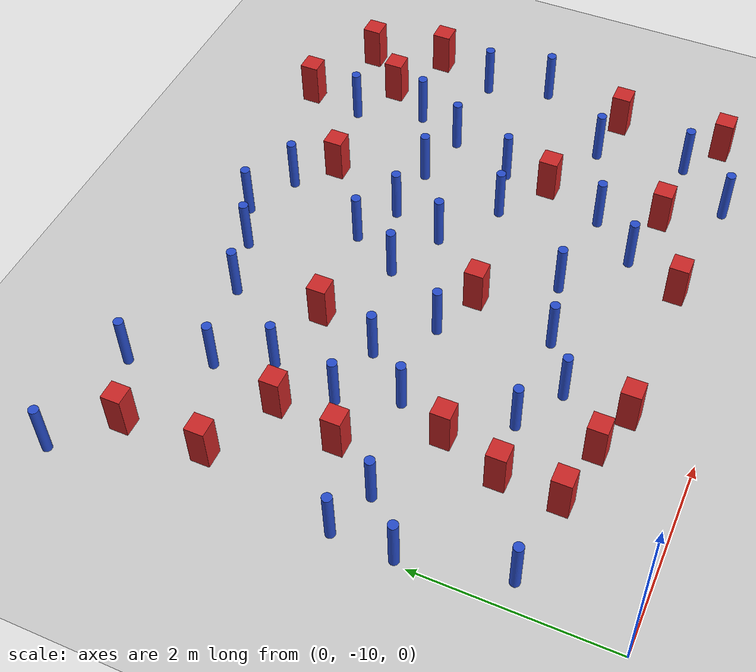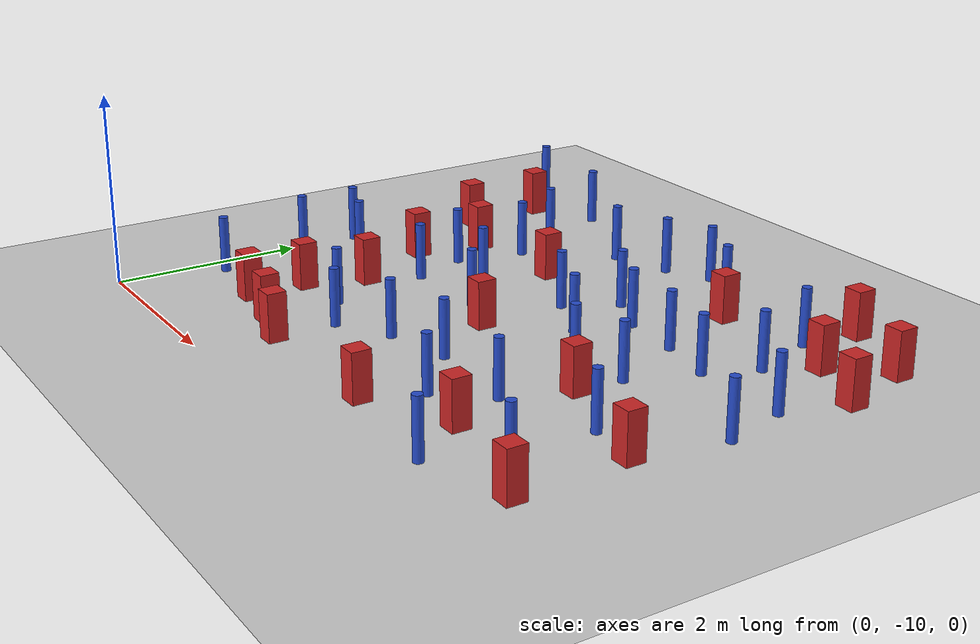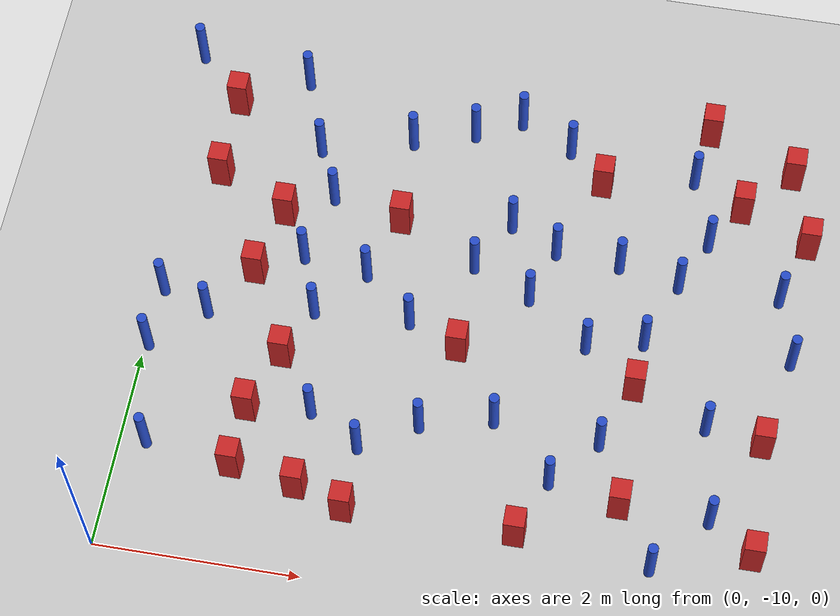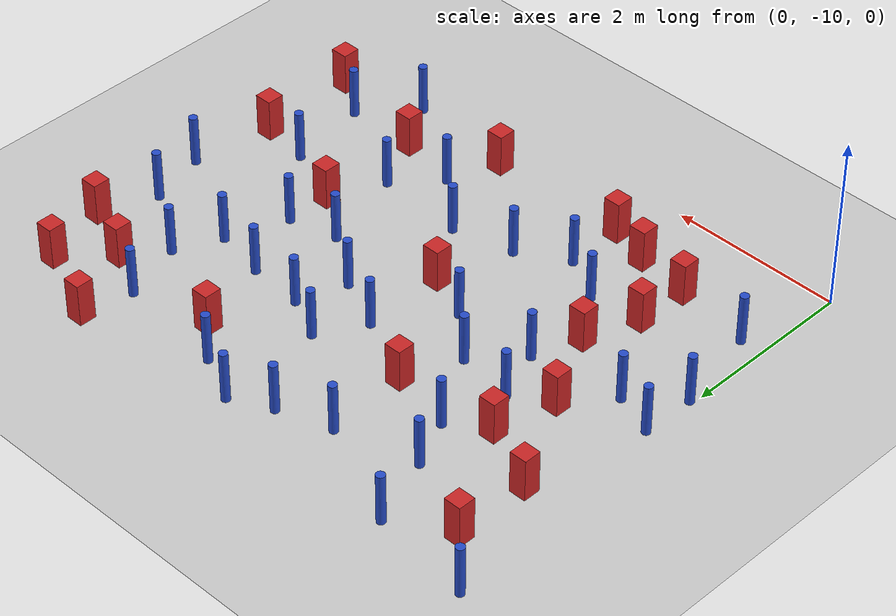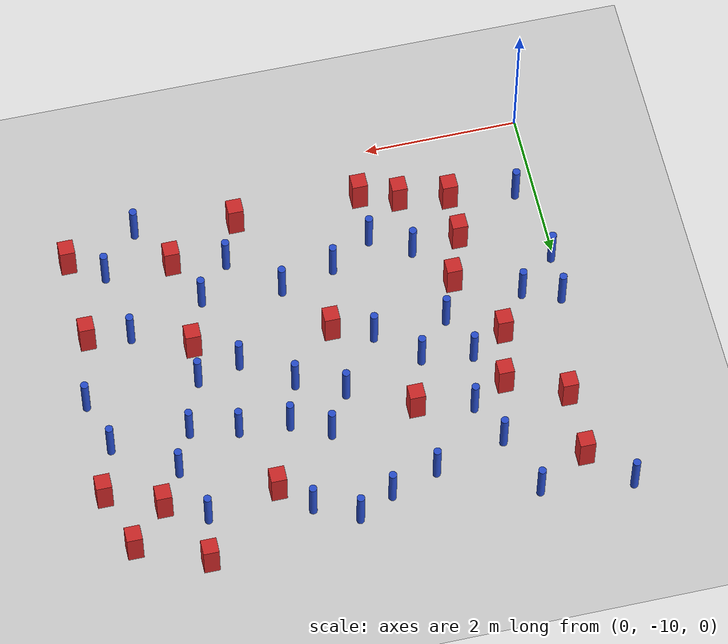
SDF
<sdf version="1.6">
 <world name="default">
  <model name="ground_plane">
   <static>1</static>
   <link name="link">
    <collision name="collision">
     <geometry><plane><normal>0 0 1</normal><size>100 100</size></plane></geometry>
     <surface><friction><ode><mu>100</mu><mu2>50</mu2></ode></friction></surface>
    </collision>
    <visual name="visual">
     <cast_shadows>0</cast_shadows>
     <geometry><plane><normal>0 0 1</normal><size>100 100</size></plane></geometry>
     <material>
      <ambient>1.0 1.0 1.0 1.0</ambient>
      <diffuse>0.8 0.8 0.8 1.0</diffuse>
      <specular>0.01 0.01 0.01 1.000000</specular>
     </material>
    </visual>
   </link>
  </model>
  <model name="pole_obstacle5">
   <static>true</static>
   <pose>3.81524435492 -4.99224262672 2.88873142074e-08 -9.90536689859e-09 4.60219948989e-07 -1.20965994961e-07</pose>
   <link name="link">
    <pose>0 0 0.3 0 -0 0</pose>
    <inertial>
     <mass>1</mass>
     <inertia><ixx>0.145833</ixx><ixy>0</ixy><ixz>0</ixz><iyy>0.145833</iyy><iyz>0</iyz><izz>0.125</izz></inertia>
    </inertial>
    <collision name="collision">
     <geometry><cylinder><radius>0.05</radius><length>.6</length></cylinder></geometry>
    </collision>
    <visual name="visual">
     <geometry><cylinder><radius>0.05</radius><length>.6</length></cylinder></geometry>
     <material>
      <script><name>Gazebo/Blue</name><uri>file://media/materials/scripts/gazebo.material</uri></script>
     </material>
    </visual>
   </link>
  </model>
  <model name="square_post_obstacle6">
   <static>true</static>
   <pose>4.18874064382 -5.33425178005 8.22691968438e-08 7.2212513382e-06 -7.54495500217e-07 2.29674213826e-05</pose>
   <link name="link">
    <pose>0 0 0.25 0 -0 0</pose>
    <inertial>
     <mass>100</mass>
     <inertia>
      <ixx>0.166667</ixx>
      <ixy>0</ixy>
      <ixz>0</ixz>
      <iyy>0.166667</iyy>
      <iyz>0</iyz>
      <izz>0.166667</izz>
     </inertia>
    </inertial>
    <collision name="collision"><geometry><box><size>.2 .2 .5</size></box></geometry></collision>
    <visual name="visual">
     <geometry><box><size>.2 .2 .5</size></box></geometry>
     <material>
      <script><name>Gazebo/Red</name><uri>file://media/materials/scripts/gazebo.material</uri></script>
     </material>
    </visual>
   </link>
  </model>
  <model name="pole_obstacle11">
   <static>true</static>
   <pose>4.8431363912 -7.06583838688 2.88873142074e-08 -9.90536690842e-09 4.60219948965e-07 -1.20965994976e-07</pose>
   <link name="link">
    <pose>0 0 0.3 0 -0 0</pose>
    <inertial>
     <mass>1</mass>
     <inertia><ixx>0.145833</ixx><ixy>0</ixy><ixz>0</ixz><iyy>0.145833</iyy><iyz>0</iyz><izz>0.125</izz></inertia>
    </inertial>
    <collision name="collision">
     <geometry><cylinder><radius>0.05</radius><length>.6</length></cylinder></geometry>
    </collision>
    <visual name="visual">
     <geometry><cylinder><radius>0.05</radius><length>.6</length></cylinder></geometry>
     <material>
      <script><name>Gazebo/Blue</name><uri>file://media/materials/scripts/gazebo.material</uri></script>
     </material>
    </visual>
   </link>
  </model>
  <model name="square_post_obstacle9">
   <static>true</static>
   <pose>2.24763330998 -6.09969372147 8.22691968438e-08 7.2212513382e-06 -7.54495500217e-07 2.29674213826e-05</pose>
   <link name="link">
    <pose>0 0 0.25 0 -0 0</pose>
    <inertial>
     <mass>100</mass>
     <inertia>
      <ixx>0.166667</ixx>
      <ixy>0</ixy>
      <ixz>0</ixz>
      <iyy>0.166667</iyy>
      <iyz>0</iyz>
      <izz>0.166667</izz>
     </inertia>
    </inertial>
    <collision name="collision"><geometry><box><size>.2 .2 .5</size></box></geometry></collision>
    <visual name="visual">
     <geometry><box><size>.2 .2 .5</size></box></geometry>
     <material>
      <script><name>Gazebo/Red</name><uri>file://media/materials/scripts/gazebo.material</uri></script>
     </material>
    </visual>
   </link>
  </model>
  <model name="pole_obstacle13">
   <static>true</static>
   <pose>2.27692390279 -8.6323744666 2.88873142074e-08 -9.90536692318e-09 4.6021994893e-07 -1.20965994988e-07</pose>
   <link name="link">
    <pose>0 0 0.3 0 -0 0</pose>
    <inertial>
     <mass>1</mass>
     <inertia><ixx>0.145833</ixx><ixy>0</ixy><ixz>0</ixz><iyy>0.145833</iyy><iyz>0</iyz><izz>0.125</izz></inertia>
    </inertial>
    <collision name="collision">
     <geometry><cylinder><radius>0.05</radius><length>.6</length></cylinder></geometry>
    </collision>
    <visual name="visual">
     <geometry><cylinder><radius>0.05</radius><length>.6</length></cylinder></geometry>
     <material>
      <script><name>Gazebo/Blue</name><uri>file://media/materials/scripts/gazebo.material</uri></script>
     </material>
    </visual>
   </link>
  </model>
  <model name="pole_obstacle20">
   <static>true</static>
   <pose>5.09812605099 -6.37419591388 2.88873142074e-08 -9.90536690842e-09 4.60219948965e-07 -1.20965994976e-07</pose>
   <link name="link">
    <pose>0 0 0.3 0 -0 0</pose>
    <inertial>
     <mass>1</mass>
     <inertia><ixx>0.145833</ixx><ixy>0</ixy><ixz>0</ixz><iyy>0.145833</iyy><iyz>0</iyz><izz>0.125</izz></inertia>
    </inertial>
    <collision name="collision">
     <geometry><cylinder><radius>0.05</radius><length>.6</length></cylinder></geometry>
    </collision>
    <visual name="visual">
     <geometry><cylinder><radius>0.05</radius><length>.6</length></cylinder></geometry>
     <material>
      <script><name>Gazebo/Blue</name><uri>file://media/materials/scripts/gazebo.material</uri></script>
     </material>
    </visual>
   </link>
  </model>
  <model name="pole_obstacle43">
   <static>true</static>
   <pose>0.264639694983 -8.90641489468 2.88873142074e-08 -9.90536691191e-09 4.60219948957e-07 -1.20965994982e-07</pose>
   <link name="link">
    <pose>0 0 0.3 0 -0 0</pose>
    <inertial>
     <mass>1</mass>
     <inertia><ixx>0.145833</ixx><ixy>0</ixy><ixz>0</ixz><iyy>0.145833</iyy><iyz>0</iyz><izz>0.125</izz></inertia>
    </inertial>
    <collision name="collision">
     <geometry><cylinder><radius>0.05</radius><length>.6</length></cylinder></geometry>
    </collision>
    <visual name="visual">
     <geometry><cylinder><radius>0.05</radius><length>.6</length></cylinder></geometry>
     <material>
      <script><name>Gazebo/Blue</name><uri>file://media/materials/scripts/gazebo.material</uri></script>
     </material>
    </visual>
   </link>
  </model>
  <model name="pole_obstacle46">
   <static>true</static>
   <pose>1.76827469784 -8.339376097 2.88873142074e-08 -9.90536690474e-09 4.60219948974e-07 -1.2096599497e-07</pose>
   <link name="link">
    <pose>0 0 0.3 0 -0 0</pose>
    <inertial>
     <mass>1</mass>
     <inertia><ixx>0.145833</ixx><ixy>0</ixy><ixz>0</ixz><iyy>0.145833</iyy><iyz>0</iyz><izz>0.125</izz></inertia>
    </inertial>
    <collision name="collision">
     <geometry><cylinder><radius>0.05</radius><length>.6</length></cylinder></geometry>
    </collision>
    <visual name="visual">
     <geometry><cylinder><radius>0.05</radius><length>.6</length></cylinder></geometry>
     <material>
      <script><name>Gazebo/Blue</name><uri>file://media/materials/scripts/gazebo.material</uri></script>
     </material>
    </visual>
   </link>
  </model>
  <model name="square_post_obstacle40">
   <static>true</static>
   <pose>0.339728241094 -4.977939211 8.22691968438e-08 7.22125133819e-06 -7.54495500217e-07 2.29674213826e-05</pose>
   <link name="link">
    <pose>0 0 0.25 0 -0 0</pose>
    <inertial>
     <mass>100</mass>
     <inertia>
      <ixx>0.166667</ixx>
      <ixy>0</ixy>
      <ixz>0</ixz>
      <iyy>0.166667</iyy>
      <iyz>0</iyz>
      <izz>0.166667</izz>
     </inertia>
    </inertial>
    <collision name="collision"><geometry><box><size>.2 .2 .5</size></box></geometry></collision>
    <visual name="visual">
     <geometry><box><size>.2 .2 .5</size></box></geometry>
     <material>
      <script><name>Gazebo/Red</name><uri>file://media/materials/scripts/gazebo.material</uri></script>
     </material>
    </visual>
   </link>
  </model>
  <model name="pole_obstacle58">
   <static>true</static>
   <pose>2.01731111533 -6.76396159729 2.88873142074e-08 -9.90536689932e-09 4.60219948987e-07 -1.20965994962e-07</pose>
   <link name="link">
    <pose>0 0 0.3 0 -0 0</pose>
    <inertial>
     <mass>1</mass>
     <inertia><ixx>0.145833</ixx><ixy>0</ixy><ixz>0</ixz><iyy>0.145833</iyy><iyz>0</iyz><izz>0.125</izz></inertia>
    </inertial>
    <collision name="collision">
     <geometry><cylinder><radius>0.05</radius><length>.6</length></cylinder></geometry>
    </collision>
    <visual name="visual">
     <geometry><cylinder><radius>0.05</radius><length>.6</length></cylinder></geometry>
     <material>
      <script><name>Gazebo/Blue</name><uri>file://media/materials/scripts/gazebo.material</uri></script>
     </material>
    </visual>
   </link>
  </model>
  <model name="square_post_obstacle46">
   <static>true</static>
   <pose>1.0769217529 -6.20205790344 8.22691968438e-08 7.2212513382e-06 -7.54495500217e-07 2.29674213826e-05</pose>
   <link name="link">
    <pose>0 0 0.25 0 -0 0</pose>
    <inertial>
     <mass>100</mass>
     <inertia>
      <ixx>0.166667</ixx>
      <ixy>0</ixy>
      <ixz>0</ixz>
      <iyy>0.166667</iyy>
      <iyz>0</iyz>
      <izz>0.166667</izz>
     </inertia>
    </inertial>
    <collision name="collision"><geometry><box><size>.2 .2 .5</size></box></geometry></collision>
    <visual name="visual">
     <geometry><box><size>.2 .2 .5</size></box></geometry>
     <material>
      <script><name>Gazebo/Red</name><uri>file://media/materials/scripts/gazebo.material</uri></script>
     </material>
    </visual>
   </link>
  </model>
  <model name="pole_obstacle62">
   <static>true</static>
   <pose>3.84203933356 -6.19958246371 2.88873142074e-08 -9.90536689859e-09 4.60219948989e-07 -1.20965994961e-07</pose>
   <link name="link">
    <pose>0 0 0.3 0 -0 0</pose>
    <inertial>
     <mass>1</mass>
     <inertia><ixx>0.145833</ixx><ixy>0</ixy><ixz>0</ixz><iyy>0.145833</iyy><iyz>0</iyz><izz>0.125</izz></inertia>
    </inertial>
    <collision name="collision">
     <geometry><cylinder><radius>0.05</radius><length>.6</length></cylinder></geometry>
    </collision>
    <visual name="visual">
     <geometry><cylinder><radius>0.05</radius><length>.6</length></cylinder></geometry>
     <material>
      <script><name>Gazebo/Blue</name><uri>file://media/materials/scripts/gazebo.material</uri></script>
     </material>
    </visual>
   </link>
  </model>
  <model name="square_post_obstacle52">
   <static>true</static>
   <pose>5.20889299281 -4.54300262199 8.22691968438e-08 7.2212513382e-06 -7.54495500217e-07 2.29674213826e-05</pose>
   <link name="link">
    <pose>0 0 0.25 0 -0 0</pose>
    <inertial>
     <mass>100</mass>
     <inertia>
      <ixx>0.166667</ixx>
      <ixy>0</ixy>
      <ixz>0</ixz>
      <iyy>0.166667</iyy>
      <iyz>0</iyz>
      <izz>0.166667</izz>
     </inertia>
    </inertial>
    <collision name="collision"><geometry><box><size>.2 .2 .5</size></box></geometry></collision>
    <visual name="visual">
     <geometry><box><size>.2 .2 .5</size></box></geometry>
     <material>
      <script><name>Gazebo/Red</name><uri>file://media/materials/scripts/gazebo.material</uri></script>
     </material>
    </visual>
   </link>
  </model>
  <model name="square_post_obstacle57">
   <static>true</static>
   <pose>1.36781638755 -7.78040220193 8.22691968438e-08 7.2212513382e-06 -7.54495500217e-07 2.29674213826e-05</pose>
   <link name="link">
    <pose>0 0 0.25 0 -0 0</pose>
    <inertial>
     <mass>100</mass>
     <inertia>
      <ixx>0.166667</ixx>
      <ixy>0</ixy>
      <ixz>0</ixz>
      <iyy>0.166667</iyy>
      <iyz>0</iyz>
      <izz>0.166667</izz>
     </inertia>
    </inertial>
    <collision name="collision"><geometry><box><size>.2 .2 .5</size></box></geometry></collision>
    <visual name="visual">
     <geometry><box><size>.2 .2 .5</size></box></geometry>
     <material>
      <script><name>Gazebo/Red</name><uri>file://media/materials/scripts/gazebo.material</uri></script>
     </material>
    </visual>
   </link>
  </model>
  <model name="pole_obstacle70">
   <static>true</static>
   <pose>1.58026823043 -7.26249361867 2.88873142074e-08 -9.90536689852e-09 4.60219948989e-07 -1.2096599496e-07</pose>
   <link name="link">
    <pose>0 0 0.3 0 -0 0</pose>
    <inertial>
     <mass>1</mass>
     <inertia><ixx>0.145833</ixx><ixy>0</ixy><ixz>0</ixz><iyy>0.145833</iyy><iyz>0</iyz><izz>0.125</izz></inertia>
    </inertial>
    <collision name="collision">
     <geometry><cylinder><radius>0.05</radius><length>.6</length></cylinder></geometry>
    </collision>
    <visual name="visual">
     <geometry><cylinder><radius>0.05</radius><length>.6</length></cylinder></geometry>
     <material>
      <script><name>Gazebo/Blue</name><uri>file://media/materials/scripts/gazebo.material</uri></script>
     </material>
    </visual>
   </link>
  </model>
  <model name="pole_obstacle73">
   <static>true</static>
   <pose>5.5492631859 -7.87879161012 2.88873142074e-08 -9.90536690842e-09 4.60219948965e-07 -1.20965994976e-07</pose>
   <link name="link">
    <pose>0 0 0.3 0 -0 0</pose>
    <inertial>
     <mass>1</mass>
     <inertia><ixx>0.145833</ixx><ixy>0</ixy><ixz>0</ixz><iyy>0.145833</iyy><iyz>0</iyz><izz>0.125</izz></inertia>
    </inertial>
    <collision name="collision">
     <geometry><cylinder><radius>0.05</radius><length>.6</length></cylinder></geometry>
    </collision>
    <visual name="visual">
     <geometry><cylinder><radius>0.05</radius><length>.6</length></cylinder></geometry>
     <material>
      <script><name>Gazebo/Blue</name><uri>file://media/materials/scripts/gazebo.material</uri></script>
     </material>
    </visual>
   </link>
  </model>
  <model name="pole_obstacle76">
   <static>true</static>
   <pose>0.538769032406 -7.43225004174 2.88873142074e-08 -9.90536689714e-09 4.60219948992e-07 -1.20965994957e-07</pose>
   <link name="link">
    <pose>0 0 0.3 0 -0 0</pose>
    <inertial>
     <mass>1</mass>
     <inertia><ixx>0.145833</ixx><ixy>0</ixy><ixz>0</ixz><iyy>0.145833</iyy><iyz>0</iyz><izz>0.125</izz></inertia>
    </inertial>
    <collision name="collision">
     <geometry><cylinder><radius>0.05</radius><length>.6</length></cylinder></geometry>
    </collision>
    <visual name="visual">
     <geometry><cylinder><radius>0.05</radius><length>.6</length></cylinder></geometry>
     <material>
      <script><name>Gazebo/Blue</name><uri>file://media/materials/scripts/gazebo.material</uri></script>
     </material>
    </visual>
   </link>
  </model>
  <model name="square_post_obstacle65">
   <static>true</static>
   <pose>4.83509331147 -8.81427664572 8.22691968438e-08 7.22125133819e-06 -7.54495500217e-07 2.29674213826e-05</pose>
   <link name="link">
    <pose>0 0 0.25 0 -0 0</pose>
    <inertial>
     <mass>100</mass>
     <inertia>
      <ixx>0.166667</ixx>
      <ixy>0</ixy>
      <ixz>0</ixz>
      <iyy>0.166667</iyy>
      <iyz>0</iyz>
      <izz>0.166667</izz>
     </inertia>
    </inertial>
    <collision name="collision"><geometry><box><size>.2 .2 .5</size></box></geometry></collision>
    <visual name="visual">
     <geometry><box><size>.2 .2 .5</size></box></geometry>
     <material>
      <script><name>Gazebo/Red</name><uri>file://media/materials/scripts/gazebo.material</uri></script>
     </material>
    </visual>
   </link>
  </model>
  <model name="pole_obstacle92">
   <static>true</static>
   <pose>5.69736549006 -8.83003891529 2.88873142074e-08 -9.9053668967e-09 4.60219948993e-07 -1.20965994957e-07</pose>
   <link name="link">
    <pose>0 0 0.3 0 -0 0</pose>
    <inertial>
     <mass>1</mass>
     <inertia><ixx>0.145833</ixx><ixy>0</ixy><ixz>0</ixz><iyy>0.145833</iyy><iyz>0</iyz><izz>0.125</izz></inertia>
    </inertial>
    <collision name="collision">
     <geometry><cylinder><radius>0.05</radius><length>.6</length></cylinder></geometry>
    </collision>
    <visual name="visual">
     <geometry><cylinder><radius>0.05</radius><length>.6</length></cylinder></geometry>
     <material>
      <script><name>Gazebo/Blue</name><uri>file://media/materials/scripts/gazebo.material</uri></script>
     </material>
    </visual>
   </link>
  </model>
  <model name="pole_obstacle103">
   <static>true</static>
   <pose>1.28098076329 -5.40270818801 2.88873142074e-08 -9.90536689852e-09 4.60219948989e-07 -1.2096599496e-07</pose>
   <link name="link">
    <pose>0 0 0.3 0 -0 0</pose>
    <inertial>
     <mass>1</mass>
     <inertia><ixx>0.145833</ixx><ixy>0</ixy><ixz>0</ixz><iyy>0.145833</iyy><iyz>0</iyz><izz>0.125</izz></inertia>
    </inertial>
    <collision name="collision">
     <geometry><cylinder><radius>0.05</radius><length>.6</length></cylinder></geometry>
    </collision>
    <visual name="visual">
     <geometry><cylinder><radius>0.05</radius><length>.6</length></cylinder></geometry>
     <material>
      <script><name>Gazebo/Blue</name><uri>file://media/materials/scripts/gazebo.material</uri></script>
     </material>
    </visual>
   </link>
  </model>
  <model name="square_post_obstacle101">
   <static>true</static>
   <pose>6.10281968561 -7.96135425645 8.22691968438e-08 7.2212513382e-06 -7.54495500217e-07 2.29674213826e-05</pose>
   <link name="link">
    <pose>0 0 0.25 0 -0 0</pose>
    <inertial>
     <mass>100</mass>
     <inertia>
      <ixx>0.166667</ixx>
      <ixy>0</ixy>
      <ixz>0</ixz>
      <iyy>0.166667</iyy>
      <iyz>0</iyz>
      <izz>0.166667</izz>
     </inertia>
    </inertial>
    <collision name="collision"><geometry><box><size>.2 .2 .5</size></box></geometry></collision>
    <visual name="visual">
     <geometry><box><size>.2 .2 .5</size></box></geometry>
     <material>
      <script><name>Gazebo/Red</name><uri>file://media/materials/scripts/gazebo.material</uri></script>
     </material>
    </visual>
   </link>
  </model>
  <model name="pole_obstacle115">
   <static>true</static>
   <pose>3.65606419109 -6.76330860936 2.88873142074e-08 -9.90536689859e-09 4.60219948989e-07 -1.20965994961e-07</pose>
   <link name="link">
    <pose>0 0 0.3 0 -0 0</pose>
    <inertial>
     <mass>1</mass>
     <inertia><ixx>0.145833</ixx><ixy>0</ixy><ixz>0</ixz><iyy>0.145833</iyy><iyz>0</iyz><izz>0.125</izz></inertia>
    </inertial>
    <collision name="collision">
     <geometry><cylinder><radius>0.05</radius><length>.6</length></cylinder></geometry>
    </collision>
    <visual name="visual">
     <geometry><cylinder><radius>0.05</radius><length>.6</length></cylinder></geometry>
     <material>
      <script><name>Gazebo/Blue</name><uri>file://media/materials/scripts/gazebo.material</uri></script>
     </material>
    </visual>
   </link>
  </model>
  <model name="square_post_obstacle113">
   <static>true</static>
   <pose>1.77558061902 -9.1251898653 8.22691968438e-08 7.22125133819e-06 -7.54495500217e-07 2.29674213826e-05</pose>
   <link name="link">
    <pose>0 0 0.25 0 -0 0</pose>
    <inertial>
     <mass>100</mass>
     <inertia>
      <ixx>0.166667</ixx>
      <ixy>0</ixy>
      <ixz>0</ixz>
      <iyy>0.166667</iyy>
      <iyz>0</iyz>
      <izz>0.166667</izz>
     </inertia>
    </inertial>
    <collision name="collision"><geometry><box><size>.2 .2 .5</size></box></geometry></collision>
    <visual name="visual">
     <geometry><box><size>.2 .2 .5</size></box></geometry>
     <material>
      <script><name>Gazebo/Red</name><uri>file://media/materials/scripts/gazebo.material</uri></script>
     </material>
    </visual>
   </link>
  </model>
  <model name="pole_obstacle119">
   <static>true</static>
   <pose>-0.168450261486 -4.46731600663 2.88873142074e-08 -9.90536689816e-09 4.6021994899e-07 -1.20965994961e-07</pose>
   <link name="link">
    <pose>0 0 0.3 0 -0 0</pose>
    <inertial>
     <mass>1</mass>
     <inertia><ixx>0.145833</ixx><ixy>0</ixy><ixz>0</ixz><iyy>0.145833</iyy><iyz>0</iyz><izz>0.125</izz></inertia>
    </inertial>
    <collision name="collision">
     <geometry><cylinder><radius>0.05</radius><length>.6</length></cylinder></geometry>
    </collision>
    <visual name="visual">
     <geometry><cylinder><radius>0.05</radius><length>.6</length></cylinder></geometry>
     <material>
      <script><name>Gazebo/Blue</name><uri>file://media/materials/scripts/gazebo.material</uri></script>
     </material>
    </visual>
   </link>
  </model>
  <model name="pole_obstacle124">
   <static>true</static>
   <pose>3.05756443816 -6.49259111899 2.88873142074e-08 -9.90536689859e-09 4.60219948989e-07 -1.20965994961e-07</pose>
   <link name="link">
    <pose>0 0 0.3 0 -0 0</pose>
    <inertial>
     <mass>1</mass>
     <inertia><ixx>0.145833</ixx><ixy>0</ixy><ixz>0</ixz><iyy>0.145833</iyy><iyz>0</iyz><izz>0.125</izz></inertia>
    </inertial>
    <collision name="collision">
     <geometry><cylinder><radius>0.05</radius><length>.6</length></cylinder></geometry>
    </collision>
    <visual name="visual">
     <geometry><cylinder><radius>0.05</radius><length>.6</length></cylinder></geometry>
     <material>
      <script><name>Gazebo/Blue</name><uri>file://media/materials/scripts/gazebo.material</uri></script>
     </material>
    </visual>
   </link>
  </model>
  <model name="pole_obstacle128">
   <static>true</static>
   <pose>5.11041046309 -5.14138573232 2.88873142074e-08 -9.90536690842e-09 4.60219948965e-07 -1.20965994976e-07</pose>
   <link name="link">
    <pose>0 0 0.3 0 -0 0</pose>
    <inertial>
     <mass>1</mass>
     <inertia><ixx>0.145833</ixx><ixy>0</ixy><ixz>0</ixz><iyy>0.145833</iyy><iyz>0</iyz><izz>0.125</izz></inertia>
    </inertial>
    <collision name="collision">
     <geometry><cylinder><radius>0.05</radius><length>.6</length></cylinder></geometry>
    </collision>
    <visual name="visual">
     <geometry><cylinder><radius>0.05</radius><length>.6</length></cylinder></geometry>
     <material>
      <script><name>Gazebo/Blue</name><uri>file://media/materials/scripts/gazebo.material</uri></script>
     </material>
    </visual>
   </link>
  </model>
  <model name="pole_obstacle129">
   <static>true</static>
   <pose>6.1053449282 -6.36332185559 2.88873142074e-08 -9.90536690842e-09 4.60219948965e-07 -1.20965994976e-07</pose>
   <link name="link">
    <pose>0 0 0.3 0 -0 0</pose>
    <inertial>
     <mass>1</mass>
     <inertia><ixx>0.145833</ixx><ixy>0</ixy><ixz>0</ixz><iyy>0.145833</iyy><iyz>0</iyz><izz>0.125</izz></inertia>
    </inertial>
    <collision name="collision">
     <geometry><cylinder><radius>0.05</radius><length>.6</length></cylinder></geometry>
    </collision>
    <visual name="visual">
     <geometry><cylinder><radius>0.05</radius><length>.6</length></cylinder></geometry>
     <material>
      <script><name>Gazebo/Blue</name><uri>file://media/materials/scripts/gazebo.material</uri></script>
     </material>
    </visual>
   </link>
  </model>
  <model name="square_post_obstacle131">
   <static>true</static>
   <pose>2.26506149522 -9.28146168363 8.22691968438e-08 7.22125133819e-06 -7.54495500217e-07 2.29674213826e-05</pose>
   <link name="link">
    <pose>0 0 0.25 0 -0 0</pose>
    <inertial>
     <mass>100</mass>
     <inertia>
      <ixx>0.166667</ixx>
      <ixy>0</ixy>
      <ixz>0</ixz>
      <iyy>0.166667</iyy>
      <iyz>0</iyz>
      <izz>0.166667</izz>
     </inertia>
    </inertial>
    <collision name="collision"><geometry><box><size>.2 .2 .5</size></box></geometry></collision>
    <visual name="visual">
     <geometry><box><size>.2 .2 .5</size></box></geometry>
     <material>
      <script><name>Gazebo/Red</name><uri>file://media/materials/scripts/gazebo.material</uri></script>
     </material>
    </visual>
   </link>
  </model>
  <model name="square_post_obstacle136">
   <static>true</static>
   <pose>5.62205542479 -5.40413496398 8.22691968438e-08 7.22125133819e-06 -7.54495500217e-07 2.29674213826e-05</pose>
   <link name="link">
    <pose>0 0 0.25 0 -0 0</pose>
    <inertial>
     <mass>100</mass>
     <inertia>
      <ixx>0.166667</ixx>
      <ixy>0</ixy>
      <ixz>0</ixz>
      <iyy>0.166667</iyy>
      <iyz>0</iyz>
      <izz>0.166667</izz>
     </inertia>
    </inertial>
    <collision name="collision"><geometry><box><size>.2 .2 .5</size></box></geometry></collision>
    <visual name="visual">
     <geometry><box><size>.2 .2 .5</size></box></geometry>
     <material>
      <script><name>Gazebo/Red</name><uri>file://media/materials/scripts/gazebo.material</uri></script>
     </material>
    </visual>
   </link>
  </model>
  <model name="pole_obstacle145">
   <static>true</static>
   <pose>0.0592032774568 -7.25611399639 2.88873142074e-08 -9.90536689796e-09 4.6021994899e-07 -1.20965994961e-07</pose>
   <link name="link">
    <pose>0 0 0.3 0 -0 0</pose>
    <inertial>
     <mass>1</mass>
     <inertia><ixx>0.145833</ixx><ixy>0</ixy><ixz>0</ixz><iyy>0.145833</iyy><iyz>0</iyz><izz>0.125</izz></inertia>
    </inertial>
    <collision name="collision">
     <geometry><cylinder><radius>0.05</radius><length>.6</length></cylinder></geometry>
    </collision>
    <visual name="visual">
     <geometry><cylinder><radius>0.05</radius><length>.6</length></cylinder></geometry>
     <material>
      <script><name>Gazebo/Blue</name><uri>file://media/materials/scripts/gazebo.material</uri></script>
     </material>
    </visual>
   </link>
  </model>
  <model name="square_post_obstacle144">
   <static>true</static>
   <pose>4.81196466348 -7.56646055349 8.22691968438e-08 7.22125133819e-06 -7.54495500217e-07 2.29674213826e-05</pose>
   <link name="link">
    <pose>0 0 0.25 0 -0 0</pose>
    <inertial>
     <mass>100</mass>
     <inertia>
      <ixx>0.166667</ixx>
      <ixy>0</ixy>
      <ixz>0</ixz>
      <iyy>0.166667</iyy>
      <iyz>0</iyz>
      <izz>0.166667</izz>
     </inertia>
    </inertial>
    <collision name="collision"><geometry><box><size>.2 .2 .5</size></box></geometry></collision>
    <visual name="visual">
     <geometry><box><size>.2 .2 .5</size></box></geometry>
     <material>
      <script><name>Gazebo/Red</name><uri>file://media/materials/scripts/gazebo.material</uri></script>
     </material>
    </visual>
   </link>
  </model>
  <model name="pole_obstacle150">
   <static>true</static>
   <pose>6.28756418958 -7.03955008387 2.88873142074e-08 -9.90536690842e-09 4.60219948965e-07 -1.20965994976e-07</pose>
   <link name="link">
    <pose>0 0 0.3 0 -0 0</pose>
    <inertial>
     <mass>1</mass>
     <inertia><ixx>0.145833</ixx><ixy>0</ixy><ixz>0</ixz><iyy>0.145833</iyy><iyz>0</iyz><izz>0.125</izz></inertia>
    </inertial>
    <collision name="collision">
     <geometry><cylinder><radius>0.05</radius><length>.6</length></cylinder></geometry>
    </collision>
    <visual name="visual">
     <geometry><cylinder><radius>0.05</radius><length>.6</length></cylinder></geometry>
     <material>
      <script><name>Gazebo/Blue</name><uri>file://media/materials/scripts/gazebo.material</uri></script>
     </material>
    </visual>
   </link>
  </model>
  <model name="square_post_obstacle145">
   <static>true</static>
   <pose>6.13394187614 -9.1215665145 8.22691968438e-08 7.22125133819e-06 -7.54495500217e-07 2.29674213826e-05</pose>
   <link name="link">
    <pose>0 0 0.25 0 -0 0</pose>
    <inertial>
     <mass>100</mass>
     <inertia>
      <ixx>0.166667</ixx>
      <ixy>0</ixy>
      <ixz>0</ixz>
      <iyy>0.166667</iyy>
      <iyz>0</iyz>
      <izz>0.166667</izz>
     </inertia>
    </inertial>
    <collision name="collision"><geometry><box><size>.2 .2 .5</size></box></geometry></collision>
    <visual name="visual">
     <geometry><box><size>.2 .2 .5</size></box></geometry>
     <material>
      <script><name>Gazebo/Red</name><uri>file://media/materials/scripts/gazebo.material</uri></script>
     </material>
    </visual>
   </link>
  </model>
  <model name="pole_obstacle156">
   <static>true</static>
   <pose>3.35800277226 -5.96660839191 2.88873142074e-08 -9.90536689859e-09 4.60219948989e-07 -1.20965994961e-07</pose>
   <link name="link">
    <pose>0 0 0.3 0 -0 0</pose>
    <inertial>
     <mass>1</mass>
     <inertia><ixx>0.145833</ixx><ixy>0</ixy><ixz>0</ixz><iyy>0.145833</iyy><iyz>0</iyz><izz>0.125</izz></inertia>
    </inertial>
    <collision name="collision">
     <geometry><cylinder><radius>0.05</radius><length>.6</length></cylinder></geometry>
    </collision>
    <visual name="visual">
     <geometry><cylinder><radius>0.05</radius><length>.6</length></cylinder></geometry>
     <material>
      <script><name>Gazebo/Blue</name><uri>file://media/materials/scripts/gazebo.material</uri></script>
     </material>
    </visual>
   </link>
  </model>
  <model name="square_post_obstacle157">
   <static>true</static>
   <pose>0.335621958808 -5.84630910471 8.22691968438e-08 7.22125133819e-06 -7.54495500217e-07 2.29674213826e-05</pose>
   <link name="link">
    <pose>0 0 0.25 0 -0 0</pose>
    <inertial>
     <mass>100</mass>
     <inertia>
      <ixx>0.166667</ixx>
      <ixy>0</ixy>
      <ixz>0</ixz>
      <iyy>0.166667</iyy>
      <iyz>0</iyz>
      <izz>0.166667</izz>
     </inertia>
    </inertial>
    <collision name="collision"><geometry><box><size>.2 .2 .5</size></box></geometry></collision>
    <visual name="visual">
     <geometry><box><size>.2 .2 .5</size></box></geometry>
     <material>
      <script><name>Gazebo/Red</name><uri>file://media/materials/scripts/gazebo.material</uri></script>
     </material>
    </visual>
   </link>
  </model>
  <model name="square_post_obstacle160">
   <static>true</static>
   <pose>1.14812700741 -8.40195139641 8.22691968438e-08 7.22125133819e-06 -7.54495500217e-07 2.29674213826e-05</pose>
   <link name="link">
    <pose>0 0 0.25 0 -0 0</pose>
    <inertial>
     <mass>100</mass>
     <inertia>
      <ixx>0.166667</ixx>
      <ixy>0</ixy>
      <ixz>0</ixz>
      <iyy>0.166667</iyy>
      <iyz>0</iyz>
      <izz>0.166667</izz>
     </inertia>
    </inertial>
    <collision name="collision"><geometry><box><size>.2 .2 .5</size></box></geometry></collision>
    <visual name="visual">
     <geometry><box><size>.2 .2 .5</size></box></geometry>
     <material>
      <script><name>Gazebo/Red</name><uri>file://media/materials/scripts/gazebo.material</uri></script>
     </material>
    </visual>
   </link>
  </model>
  <model name="square_post_obstacle165">
   <static>true</static>
   <pose>0.914845492472 -6.90756845413 8.22691968438e-08 7.2212513382e-06 -7.54495500217e-07 2.29674213826e-05</pose>
   <link name="link">
    <pose>0 0 0.25 0 -0 0</pose>
    <inertial>
     <mass>100</mass>
     <inertia>
      <ixx>0.166667</ixx>
      <ixy>0</ixy>
      <ixz>0</ixz>
      <iyy>0.166667</iyy>
      <iyz>0</iyz>
      <izz>0.166667</izz>
     </inertia>
    </inertial>
    <collision name="collision"><geometry><box><size>.2 .2 .5</size></box></geometry></collision>
    <visual name="visual">
     <geometry><box><size>.2 .2 .5</size></box></geometry>
     <material>
      <script><name>Gazebo/Red</name><uri>file://media/materials/scripts/gazebo.material</uri></script>
     </material>
    </visual>
   </link>
  </model>
  <model name="pole_obstacle169">
   <static>true</static>
   <pose>5.33546674841 -5.85620006037 2.88873142074e-08 -9.90536690842e-09 4.60219948965e-07 -1.20965994976e-07</pose>
   <link name="link">
    <pose>0 0 0.3 0 -0 0</pose>
    <inertial>
     <mass>1</mass>
     <inertia><ixx>0.145833</ixx><ixy>0</ixy><ixz>0</ixz><iyy>0.145833</iyy><iyz>0</iyz><izz>0.125</izz></inertia>
    </inertial>
    <collision name="collision">
     <geometry><cylinder><radius>0.05</radius><length>.6</length></cylinder></geometry>
    </collision>
    <visual name="visual">
     <geometry><cylinder><radius>0.05</radius><length>.6</length></cylinder></geometry>
     <material>
      <script><name>Gazebo/Blue</name><uri>file://media/materials/scripts/gazebo.material</uri></script>
     </material>
    </visual>
   </link>
  </model>
  <model name="pole_obstacle171">
   <static>true</static>
   <pose>0.998851185505 -4.61537799358 2.88873142074e-08 -9.90536689421e-09 4.60219948999e-07 -1.20965994953e-07</pose>
   <link name="link">
    <pose>0 0 0.3 0 -0 0</pose>
    <inertial>
     <mass>1</mass>
     <inertia><ixx>0.145833</ixx><ixy>0</ixy><ixz>0</ixz><iyy>0.145833</iyy><iyz>0</iyz><izz>0.125</izz></inertia>
    </inertial>
    <collision name="collision">
     <geometry><cylinder><radius>0.05</radius><length>.6</length></cylinder></geometry>
    </collision>
    <visual name="visual">
     <geometry><cylinder><radius>0.05</radius><length>.6</length></cylinder></geometry>
     <material>
      <script><name>Gazebo/Blue</name><uri>file://media/materials/scripts/gazebo.material</uri></script>
     </material>
    </visual>
   </link>
  </model>
  <model name="pole_obstacle172">
   <static>true</static>
   <pose>1.52476899455 -5.94613843032 2.88873142074e-08 -9.90536689852e-09 4.60219948989e-07 -1.2096599496e-07</pose>
   <link name="link">
    <pose>0 0 0.3 0 -0 0</pose>
    <inertial>
     <mass>1</mass>
     <inertia><ixx>0.145833</ixx><ixy>0</ixy><ixz>0</ixz><iyy>0.145833</iyy><iyz>0</iyz><izz>0.125</izz></inertia>
    </inertial>
    <collision name="collision">
     <geometry><cylinder><radius>0.05</radius><length>.6</length></cylinder></geometry>
    </collision>
    <visual name="visual">
     <geometry><cylinder><radius>0.05</radius><length>.6</length></cylinder></geometry>
     <material>
      <script><name>Gazebo/Blue</name><uri>file://media/materials/scripts/gazebo.material</uri></script>
     </material>
    </visual>
   </link>
  </model>
  <model name="pole_obstacle175">
   <static>true</static>
   <pose>4.56328797757 -8.21192530105 2.88873142074e-08 -9.9053668967e-09 4.60219948993e-07 -1.20965994957e-07</pose>
   <link name="link">
    <pose>0 0 0.3 0 -0 0</pose>
    <inertial>
     <mass>1</mass>
     <inertia><ixx>0.145833</ixx><ixy>0</ixy><ixz>0</ixz><iyy>0.145833</iyy><iyz>0</iyz><izz>0.125</izz></inertia>
    </inertial>
    <collision name="collision">
     <geometry><cylinder><radius>0.05</radius><length>.6</length></cylinder></geometry>
    </collision>
    <visual name="visual">
     <geometry><cylinder><radius>0.05</radius><length>.6</length></cylinder></geometry>
     <material>
      <script><name>Gazebo/Blue</name><uri>file://media/materials/scripts/gazebo.material</uri></script>
     </material>
    </visual>
   </link>
  </model>
  <model name="pole_obstacle178">
   <static>true</static>
   <pose>1.36000381527 -6.66840593223 2.88873142074e-08 -9.90536689852e-09 4.60219948989e-07 -1.2096599496e-07</pose>
   <link name="link">
    <pose>0 0 0.3 0 -0 0</pose>
    <inertial>
     <mass>1</mass>
     <inertia><ixx>0.145833</ixx><ixy>0</ixy><ixz>0</ixz><iyy>0.145833</iyy><iyz>0</iyz><izz>0.125</izz></inertia>
    </inertial>
    <collision name="collision">
     <geometry><cylinder><radius>0.05</radius><length>.6</length></cylinder></geometry>
    </collision>
    <visual name="visual">
     <geometry><cylinder><radius>0.05</radius><length>.6</length></cylinder></geometry>
     <material>
      <script><name>Gazebo/Blue</name><uri>file://media/materials/scripts/gazebo.material</uri></script>
     </material>
    </visual>
   </link>
  </model>
  <model name="square_post_obstacle180">
   <static>true</static>
   <pose>3.90769263576 -9.25718229262 8.22691968438e-08 7.22125133819e-06 -7.54495500217e-07 2.29674213826e-05</pose>
   <link name="link">
    <pose>0 0 0.25 0 -0 0</pose>
    <inertial>
     <mass>100</mass>
     <inertia>
      <ixx>0.166667</ixx>
      <ixy>0</ixy>
      <ixz>0</ixz>
      <iyy>0.166667</iyy>
      <iyz>0</iyz>
      <izz>0.166667</izz>
     </inertia>
    </inertial>
    <collision name="collision"><geometry><box><size>.2 .2 .5</size></box></geometry></collision>
    <visual name="visual">
     <geometry><box><size>.2 .2 .5</size></box></geometry>
     <material>
      <script><name>Gazebo/Red</name><uri>file://media/materials/scripts/gazebo.material</uri></script>
     </material>
    </visual>
   </link>
  </model>
  <model name="square_post_obstacle190">
   <static>true</static>
   <pose>6.31803576201 -5.70702546062 8.22691968438e-08 7.2212513382e-06 -7.54495500217e-07 2.29674213826e-05</pose>
   <link name="link">
    <pose>0 0 0.25 0 -0 0</pose>
    <inertial>
     <mass>100</mass>
     <inertia>
      <ixx>0.166667</ixx>
      <ixy>0</ixy>
      <ixz>0</ixz>
      <iyy>0.166667</iyy>
      <iyz>0</iyz>
      <izz>0.166667</izz>
     </inertia>
    </inertial>
    <collision name="collision"><geometry><box><size>.2 .2 .5</size></box></geometry></collision>
    <visual name="visual">
     <geometry><box><size>.2 .2 .5</size></box></geometry>
     <material>
      <script><name>Gazebo/Red</name><uri>file://media/materials/scripts/gazebo.material</uri></script>
     </material>
    </visual>
   </link>
  </model>
  <model name="square_post_obstacle192">
   <static>true</static>
   <pose>1.13233672263 -9.01533811327 8.22691968438e-08 7.22125133819e-06 -7.54495500217e-07 2.29674213826e-05</pose>
   <link name="link">
    <pose>0 0 0.25 0 -0 0</pose>
    <inertial>
     <mass>100</mass>
     <inertia>
      <ixx>0.166667</ixx>
      <ixy>0</ixy>
      <ixz>0</ixz>
      <iyy>0.166667</iyy>
      <iyz>0</iyz>
      <izz>0.166667</izz>
     </inertia>
    </inertial>
    <collision name="collision"><geometry><box><size>.2 .2 .5</size></box></geometry></collision>
    <visual name="visual">
     <geometry><box><size>.2 .2 .5</size></box></geometry>
     <material>
      <script><name>Gazebo/Red</name><uri>file://media/materials/scripts/gazebo.material</uri></script>
     </material>
    </visual>
   </link>
  </model>
  <model name="square_post_obstacle202">
   <static>true</static>
   <pose>3.04583773003 -7.42898654869 8.22691968438e-08 7.2212513382e-06 -7.54495500217e-07 2.29674213826e-05</pose>
   <link name="link">
    <pose>0 0 0.25 0 -0 0</pose>
    <inertial>
     <mass>100</mass>
     <inertia>
      <ixx>0.166667</ixx>
      <ixy>0</ixy>
      <ixz>0</ixz>
      <iyy>0.166667</iyy>
      <iyz>0</iyz>
      <izz>0.166667</izz>
     </inertia>
    </inertial>
    <collision name="collision"><geometry><box><size>.2 .2 .5</size></box></geometry></collision>
    <visual name="visual">
     <geometry><box><size>.2 .2 .5</size></box></geometry>
     <material>
      <script><name>Gazebo/Red</name><uri>file://media/materials/scripts/gazebo.material</uri></script>
     </material>
    </visual>
   </link>
  </model>
  <model name="square_post_obstacle205">
   <static>true</static>
   <pose>6.08909172843 -4.92038271205 8.22691968438e-08 7.2212513382e-06 -7.54495500217e-07 2.29674213826e-05</pose>
   <link name="link">
    <pose>0 0 0.25 0 -0 0</pose>
    <inertial>
     <mass>100</mass>
     <inertia>
      <ixx>0.166667</ixx>
      <ixy>0</ixy>
      <ixz>0</ixz>
      <iyy>0.166667</iyy>
      <iyz>0</iyz>
      <izz>0.166667</izz>
     </inertia>
    </inertial>
    <collision name="collision"><geometry><box><size>.2 .2 .5</size></box></geometry></collision>
    <visual name="visual">
     <geometry><box><size>.2 .2 .5</size></box></geometry>
     <material>
      <script><name>Gazebo/Red</name><uri>file://media/materials/scripts/gazebo.material</uri></script>
     </material>
    </visual>
   </link>
  </model>
  <model name="pole_obstacle194">
   <static>true</static>
   <pose>3.27087391386 -4.73245259794 2.88873142074e-08 -9.90536689859e-09 4.60219948989e-07 -1.20965994961e-07</pose>
   <link name="link">
    <pose>0 0 0.3 0 -0 0</pose>
    <inertial>
     <mass>1</mass>
     <inertia><ixx>0.145833</ixx><ixy>0</ixy><ixz>0</ixz><iyy>0.145833</iyy><iyz>0</iyz><izz>0.125</izz></inertia>
    </inertial>
    <collision name="collision">
     <geometry><cylinder><radius>0.05</radius><length>.6</length></cylinder></geometry>
    </collision>
    <visual name="visual">
     <geometry><cylinder><radius>0.05</radius><length>.6</length></cylinder></geometry>
     <material>
      <script><name>Gazebo/Blue</name><uri>file://media/materials/scripts/gazebo.material</uri></script>
     </material>
    </visual>
   </link>
  </model>
  <model name="pole_obstacle202">
   <static>true</static>
   <pose>2.82274439175 -8.3130815325 2.88873142074e-08 -9.90536692318e-09 4.6021994893e-07 -1.20965994988e-07</pose>
   <link name="link">
    <pose>0 0 0.3 0 -0 0</pose>
    <inertial>
     <mass>1</mass>
     <inertia><ixx>0.145833</ixx><ixy>0</ixy><ixz>0</ixz><iyy>0.145833</iyy><iyz>0</iyz><izz>0.125</izz></inertia>
    </inertial>
    <collision name="collision">
     <geometry><cylinder><radius>0.05</radius><length>.6</length></cylinder></geometry>
    </collision>
    <visual name="visual">
     <geometry><cylinder><radius>0.05</radius><length>.6</length></cylinder></geometry>
     <material>
      <script><name>Gazebo/Blue</name><uri>file://media/materials/scripts/gazebo.material</uri></script>
     </material>
    </visual>
   </link>
  </model>
  <model name="pole_obstacle207">
   <static>true</static>
   <pose>2.19975571646 -5.15952927868 2.88873142074e-08 -9.90536689859e-09 4.60219948989e-07 -1.20965994961e-07</pose>
   <link name="link">
    <pose>0 0 0.3 0 -0 0</pose>
    <inertial>
     <mass>1</mass>
     <inertia><ixx>0.145833</ixx><ixy>0</ixy><ixz>0</ixz><iyy>0.145833</iyy><iyz>0</iyz><izz>0.125</izz></inertia>
    </inertial>
    <collision name="collision">
     <geometry><cylinder><radius>0.05</radius><length>.6</length></cylinder></geometry>
    </collision>
    <visual name="visual">
     <geometry><cylinder><radius>0.05</radius><length>.6</length></cylinder></geometry>
     <material>
      <script><name>Gazebo/Blue</name><uri>file://media/materials/scripts/gazebo.material</uri></script>
     </material>
    </visual>
   </link>
  </model>
  <model name="pole_obstacle216">
   <static>true</static>
   <pose>4.48937308508 -6.25009914582 2.88873142074e-08 -9.90536690842e-09 4.60219948965e-07 -1.20965994976e-07</pose>
   <link name="link">
    <pose>0 0 0.3 0 -0 0</pose>
    <inertial>
     <mass>1</mass>
     <inertia><ixx>0.145833</ixx><ixy>0</ixy><ixz>0</ixz><iyy>0.145833</iyy><iyz>0</iyz><izz>0.125</izz></inertia>
    </inertial>
    <collision name="collision">
     <geometry><cylinder><radius>0.05</radius><length>.6</length></cylinder></geometry>
    </collision>
    <visual name="visual">
     <geometry><cylinder><radius>0.05</radius><length>.6</length></cylinder></geometry>
     <material>
      <script><name>Gazebo/Blue</name><uri>file://media/materials/scripts/gazebo.material</uri></script>
     </material>
    </visual>
   </link>
  </model>
  <model name="pole_obstacle217">
   <static>true</static>
   <pose>4.28433000913 -7.19839997959 2.88873142074e-08 -9.90536690842e-09 4.60219948965e-07 -1.20965994976e-07</pose>
   <link name="link">
    <pose>0 0 0.3 0 -0 0</pose>
    <inertial>
     <mass>1</mass>
     <inertia><ixx>0.145833</ixx><ixy>0</ixy><ixz>0</ixz><iyy>0.145833</iyy><iyz>0</iyz><izz>0.125</izz></inertia>
    </inertial>
    <collision name="collision">
     <geometry><cylinder><radius>0.05</radius><length>.6</length></cylinder></geometry>
    </collision>
    <visual name="visual">
     <geometry><cylinder><radius>0.05</radius><length>.6</length></cylinder></geometry>
     <material>
      <script><name>Gazebo/Blue</name><uri>file://media/materials/scripts/gazebo.material</uri></script>
     </material>
    </visual>
   </link>
  </model>
  <model name="pole_obstacle218">
   <static>true</static>
   <pose>0.0421970091329 -7.87608997959 2.88873142074e-08 -9.90536689663e-09 4.60219948993e-07 -1.20965994959e-07</pose>
   <link name="link">
    <pose>0 0 0.3 0 -0 0</pose>
    <inertial>
     <mass>1</mass>
     <inertia><ixx>0.145833</ixx><ixy>0</ixy><ixz>0</ixz><iyy>0.145833</iyy><iyz>0</iyz><izz>0.125</izz></inertia>
    </inertial>
    <collision name="collision">
     <geometry><cylinder><radius>0.05</radius><length>.6</length></cylinder></geometry>
    </collision>
    <visual name="visual">
     <geometry><cylinder><radius>0.05</radius><length>.6</length></cylinder></geometry>
     <material>
      <script><name>Gazebo/Blue</name><uri>file://media/materials/scripts/gazebo.material</uri></script>
     </material>
    </visual>
   </link>
  </model>
  <model name="pole_obstacle221">
   <static>true</static>
   <pose>2.53193000913 -7.22095997959 2.88873142074e-08 -9.90536689859e-09 4.60219948989e-07 -1.20965994961e-07</pose>
   <link name="link">
    <pose>0 0 0.3 0 -0 0</pose>
    <inertial>
     <mass>1</mass>
     <inertia><ixx>0.145833</ixx><ixy>0</ixy><ixz>0</ixz><iyy>0.145833</iyy><iyz>0</iyz><izz>0.125</izz></inertia>
    </inertial>
    <collision name="collision">
     <geometry><cylinder><radius>0.05</radius><length>.6</length></cylinder></geometry>
    </collision>
    <visual name="visual">
     <geometry><cylinder><radius>0.05</radius><length>.6</length></cylinder></geometry>
     <material>
      <script><name>Gazebo/Blue</name><uri>file://media/materials/scripts/gazebo.material</uri></script>
     </material>
    </visual>
   </link>
  </model>
  <model name="pole_obstacle225">
   <static>true</static>
   <pose>2.81272000913 -4.95959997959 2.88873142074e-08 -9.90536692062e-09 4.60219948937e-07 -1.20965994985e-07</pose>
   <link name="link">
    <pose>0 0 0.3 0 -0 0</pose>
    <inertial>
     <mass>1</mass>
     <inertia><ixx>0.145833</ixx><ixy>0</ixy><ixz>0</ixz><iyy>0.145833</iyy><iyz>0</iyz><izz>0.125</izz></inertia>
    </inertial>
    <collision name="collision">
     <geometry><cylinder><radius>0.05</radius><length>.6</length></cylinder></geometry>
    </collision>
    <visual name="visual">
     <geometry><cylinder><radius>0.05</radius><length>.6</length></cylinder></geometry>
     <material>
      <script><name>Gazebo/Blue</name><uri>file://media/materials/scripts/gazebo.material</uri></script>
     </material>
    </visual>
   </link>
  </model>
  <model name="pole_obstacle234">
   <static>true</static>
   <pose>5.20575000913 -9.39657997959 2.88873142074e-08 -9.9053668967e-09 4.60219948993e-07 -1.20965994957e-07</pose>
   <link name="link">
    <pose>0 0 0.3 0 -0 0</pose>
    <inertial>
     <mass>1</mass>
     <inertia><ixx>0.145833</ixx><ixy>0</ixy><ixz>0</ixz><iyy>0.145833</iyy><iyz>0</iyz><izz>0.125</izz></inertia>
    </inertial>
    <collision name="collision">
     <geometry><cylinder><radius>0.05</radius><length>.6</length></cylinder></geometry>
    </collision>
    <visual name="visual">
     <geometry><cylinder><radius>0.05</radius><length>.6</length></cylinder></geometry>
     <material>
      <script><name>Gazebo/Blue</name><uri>file://media/materials/scripts/gazebo.material</uri></script>
     </material>
    </visual>
   </link>
  </model>
  <model name="pole_obstacle243">
   <static>true</static>
   <pose>4.14544000913 -8.68859997959 2.88873142074e-08 -9.9053668967e-09 4.60219948993e-07 -1.20965994957e-07</pose>
   <link name="link">
    <pose>0 0 0.3 0 -0 0</pose>
    <inertial>
     <mass>1</mass>
     <inertia><ixx>0.145833</ixx><ixy>0</ixy><ixz>0</ixz><iyy>0.145833</iyy><iyz>0</iyz><izz>0.125</izz></inertia>
    </inertial>
    <collision name="collision">
     <geometry><cylinder><radius>0.05</radius><length>.6</length></cylinder></geometry>
    </collision>
    <visual name="visual">
     <geometry><cylinder><radius>0.05</radius><length>.6</length></cylinder></geometry>
     <material>
      <script><name>Gazebo/Blue</name><uri>file://media/materials/scripts/gazebo.material</uri></script>
     </material>
    </visual>
   </link>
  </model>
  <model name="pole_obstacle246">
   <static>true</static>
   <pose>3.52654000913 -8.14274997959 2.88873142074e-08 -9.90536692318e-09 4.6021994893e-07 -1.20965994988e-07</pose>
   <link name="link">
    <pose>0 0 0.3 0 -0 0</pose>
    <inertial>
     <mass>1</mass>
     <inertia><ixx>0.145833</ixx><ixy>0</ixy><ixz>0</ixz><iyy>0.145833</iyy><iyz>0</iyz><izz>0.125</izz></inertia>
    </inertial>
    <collision name="collision">
     <geometry><cylinder><radius>0.05</radius><length>.6</length></cylinder></geometry>
    </collision>
    <visual name="visual">
     <geometry><cylinder><radius>0.05</radius><length>.6</length></cylinder></geometry>
     <material>
      <script><name>Gazebo/Blue</name><uri>file://media/materials/scripts/gazebo.material</uri></script>
     </material>
    </visual>
   </link>
  </model>
 </world>
</sdf>
